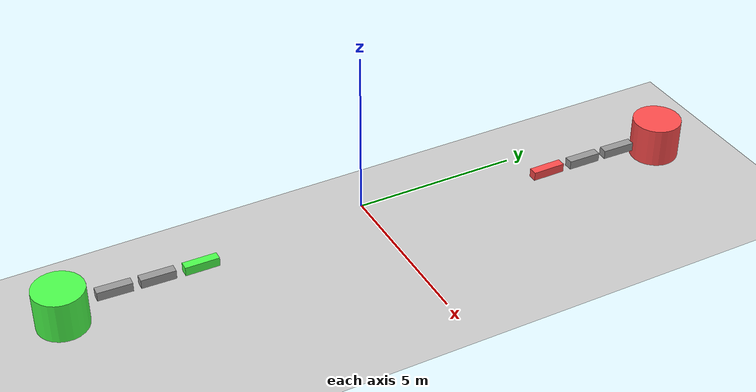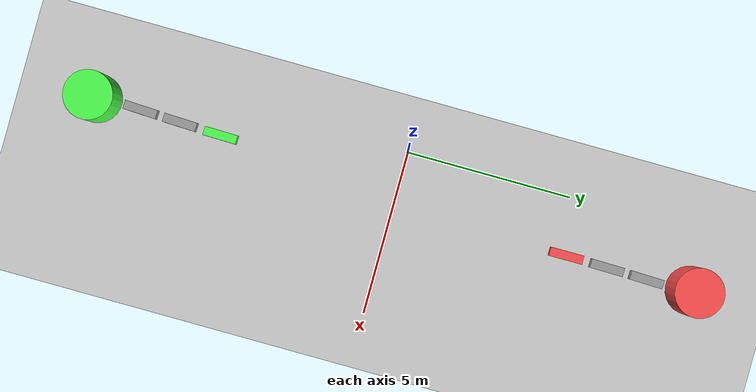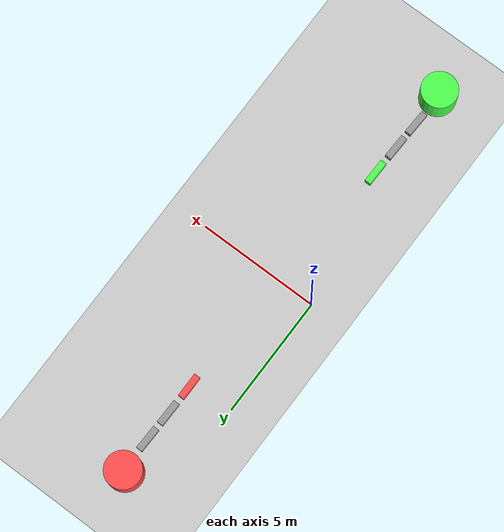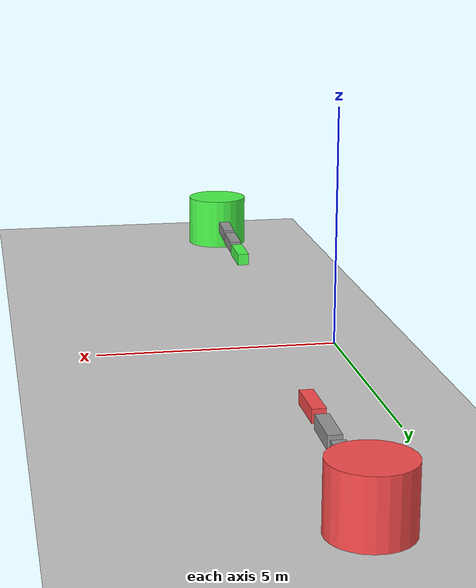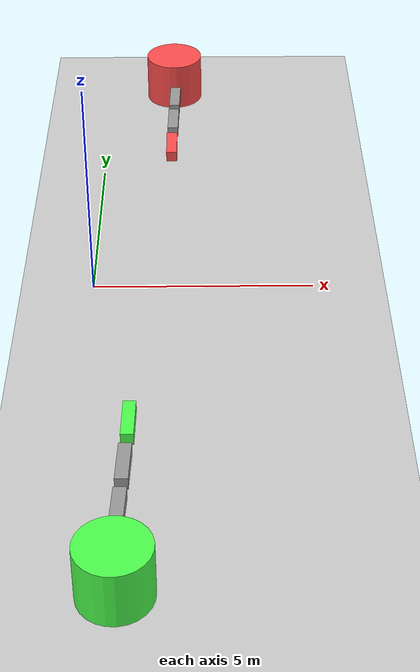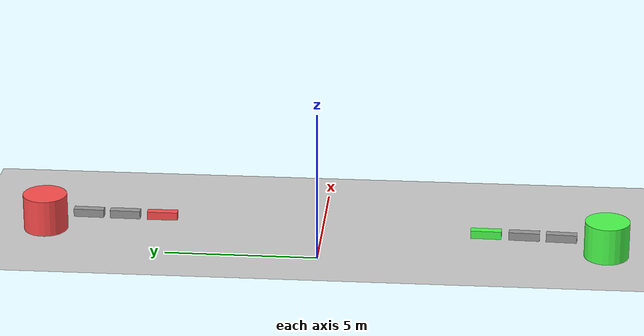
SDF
<sdf version="1.6">
 <world name="default">
  <light name="sun" type="directional">
   <pose>0 0 10 0 -0 0</pose>
   <diffuse>0.8 0.8 0.8 1</diffuse>
   <specular>0.2 0.2 0.2 1</specular>
   <attenuation>
    <range>1000</range>
    <constant>0.9</constant>
    <linear>0.01</linear>
    <quadratic>0.001</quadratic>
   </attenuation>
   <direction>-0.5 0.1 -0.9</direction>
  </light>
  <model name="ground_plane">
   <static>1</static>
   <link name="link">
    <collision name="collision">
     <geometry><plane><normal>0 0 1</normal><size>100 100</size></plane></geometry>
     <surface><friction><ode><mu>0.1</mu><mu2>0.1</mu2></ode></friction></surface>
    </collision>
    <visual name="visual">
     <cast_shadows>0</cast_shadows>
     <geometry><plane><normal>0 0 1</normal><size>100 100</size></plane></geometry>
     <material>
      <script><uri>file://media/materials/scripts/gazebo.material</uri><name>Gazebo/Grey</name></script>
     </material>
    </visual>
   </link>
  </model>
  <gravity>0 0 -9.8</gravity>
  <magnetic_field>6e-06 2.3e-05 -4.2e-05</magnetic_field>
  <atmosphere type="adiabatic"/>
  <physics name="default_physics" default="0" type="ode">
   <max_step_size>0.001</max_step_size>
   <real_time_factor>1</real_time_factor>
   <real_time_update_rate>1000</real_time_update_rate>
  </physics>
  <scene><ambient>0.4 0.4 0.4 1</ambient><background>0.7 0.7 0.7 1</background><shadows>1</shadows></scene>
  <spherical_coordinates>
   <surface_model>EARTH_WGS84</surface_model>
   <latitude_deg>0</latitude_deg>
   <longitude_deg>0</longitude_deg>
   <elevation>0</elevation>
   <heading_deg>0</heading_deg>
  </spherical_coordinates>
  <model name="bot1">
   <link name="link_base">
    <pose>1.72087 -0.200928 1e-06 0 0 -0.427261</pose>
    <inertial>
     <mass>10</mass>
     <inertia><ixx>0.67349</ixx><ixy>0</ixy><ixz>0</ixz><iyy>0.67349</iyy><iyz>0</iyz><izz>0.702036</izz></inertia>
    </inertial>
    <self_collide>1</self_collide>
    <visual name="visual">
     <geometry><cylinder><radius>0.732908</radius><length>1.21667</length></cylinder></geometry>
     <material>
      <lighting>1</lighting>
      <script><uri>file://media/materials/scripts/gazebo.material</uri><name>Gazebo/Grey</name></script>
      <ambient>0.3 1 0.3 1</ambient>
      <diffuse>0.7 0.7 0.7 1</diffuse>
      <specular>0.01 0.01 0.01 1</specular>
      <emissive>0 0 0 1</emissive>
      <shader type="vertex"><normal_map>__default__</normal_map></shader>
     </material>
    </visual>
    <collision name="collision">
     <geometry><cylinder><radius>0.732908</radius><length>1.21667</length></cylinder></geometry>
     <surface>
      <friction>
       <ode><mu>1</mu><mu2>1</mu2><fdir1>0 0 0</fdir1><slip1>0</slip1><slip2>0</slip2></ode>
       <torsional>
        <coefficient>1</coefficient>
        <patch_radius>0</patch_radius>
        <surface_radius>0</surface_radius>
        <use_patch_radius>1</use_patch_radius>
        <ode><slip>0</slip></ode>
       </torsional>
      </friction>
      <bounce><restitution_coefficient>0</restitution_coefficient><threshold>1e+06</threshold></bounce>
      <contact>
       <collide_without_contact>0</collide_without_contact>
       <collide_without_contact_bitmask>1</collide_without_contact_bitmask>
       <collide_bitmask>1</collide_bitmask>
       <ode>
        <soft_cfm>0</soft_cfm>
        <soft_erp>0.2</soft_erp>
        <kp>1e+13</kp>
        <kd>1</kd>
        <max_vel>0.01</max_vel>
        <min_depth>0</min_depth>
       </ode>
       <bullet>
        <split_impulse>1</split_impulse>
        <split_impulse_penetration_threshold>-0.01</split_impulse_penetration_threshold>
        <soft_cfm>0</soft_cfm>
        <soft_erp>0.2</soft_erp>
        <kp>1e+13</kp>
        <kd>1</kd>
       </bullet>
      </contact>
     </surface>
    </collision>
   </link>
   <link name="link_box1">
    <pose>0.253886 -0.222325 -0 0 0 -0.034076</pose>
    <inertial>
     <mass>0.0692339</mass>
     <inertia>
      <ixx>0.00079892</ixx>
      <ixy>0</ixy>
      <ixz>0</ixz>
      <iyy>0.00617228</iyy>
      <iyz>0</iyz>
      <izz>0.00616562</izz>
     </inertia>
    </inertial>
    <self_collide>1</self_collide>
    <visual name="visual">
     <geometry><box><size>1 0.262029 0.264226</size></box></geometry>
     <material>
      <lighting>1</lighting>
      <script><uri>file://media/materials/scripts/gazebo.material</uri><name>Gazebo/Grey</name></script>
      <ambient>0.3 0.3 0.3 1</ambient>
      <diffuse>0.7 0.7 0.7 1</diffuse>
      <specular>0.01 0.01 0.01 1</specular>
      <emissive>0 0 0 1</emissive>
      <shader type="vertex"><normal_map>__default__</normal_map></shader>
     </material>
    </visual>
    <collision name="collision">
     <geometry><box><size>1 0.262029 0.264226</size></box></geometry>
     <surface>
      <friction>
       <ode><mu>1</mu><mu2>1</mu2><fdir1>0 0 0</fdir1><slip1>0</slip1><slip2>0</slip2></ode>
       <torsional>
        <coefficient>1</coefficient>
        <patch_radius>0</patch_radius>
        <surface_radius>0</surface_radius>
        <use_patch_radius>1</use_patch_radius>
        <ode><slip>0</slip></ode>
       </torsional>
      </friction>
      <bounce><restitution_coefficient>0</restitution_coefficient><threshold>1e+06</threshold></bounce>
      <contact>
       <collide_without_contact>0</collide_without_contact>
       <collide_without_contact_bitmask>1</collide_without_contact_bitmask>
       <collide_bitmask>1</collide_bitmask>
       <ode>
        <soft_cfm>0</soft_cfm>
        <soft_erp>0.2</soft_erp>
        <kp>1e+13</kp>
        <kd>1</kd>
        <max_vel>0.01</max_vel>
        <min_depth>0</min_depth>
       </ode>
       <bullet>
        <split_impulse>1</split_impulse>
        <split_impulse_penetration_threshold>-0.01</split_impulse_penetration_threshold>
        <soft_cfm>0</soft_cfm>
        <soft_erp>0.2</soft_erp>
        <kp>1e+13</kp>
        <kd>1</kd>
       </bullet>
      </contact>
     </surface>
    </collision>
   </link>
   <link name="link_box2">
    <pose>-0.957688 -0.18572 0 0 0 -0.022868</pose>
    <inertial>
     <mass>0.0692339</mass>
     <inertia>
      <ixx>0.00079892</ixx>
      <ixy>0</ixy>
      <ixz>0</ixz>
      <iyy>0.00617228</iyy>
      <iyz>0</iyz>
      <izz>0.00616562</izz>
     </inertia>
    </inertial>
    <self_collide>1</self_collide>
    <visual name="visual">
     <geometry><box><size>1 0.262029 0.264226</size></box></geometry>
     <material>
      <lighting>1</lighting>
      <script><uri>file://media/materials/scripts/gazebo.material</uri><name>Gazebo/Grey</name></script>
      <ambient>0.3 0.3 0.3 1</ambient>
      <diffuse>0.7 0.7 0.7 1</diffuse>
      <specular>0.01 0.01 0.01 1</specular>
      <emissive>0 0 0 1</emissive>
      <shader type="vertex"><normal_map>__default__</normal_map></shader>
     </material>
    </visual>
    <collision name="collision">
     <geometry><box><size>1 0.262029 0.264226</size></box></geometry>
     <surface>
      <friction>
       <ode><mu>1</mu><mu2>1</mu2><fdir1>0 0 0</fdir1><slip1>0</slip1><slip2>0</slip2></ode>
       <torsional>
        <coefficient>1</coefficient>
        <patch_radius>0</patch_radius>
        <surface_radius>0</surface_radius>
        <use_patch_radius>1</use_patch_radius>
        <ode><slip>0</slip></ode>
       </torsional>
      </friction>
      <bounce><restitution_coefficient>0</restitution_coefficient><threshold>1e+06</threshold></bounce>
      <contact>
       <collide_without_contact>0</collide_without_contact>
       <collide_without_contact_bitmask>1</collide_without_contact_bitmask>
       <collide_bitmask>1</collide_bitmask>
       <ode>
        <soft_cfm>0</soft_cfm>
        <soft_erp>0.2</soft_erp>
        <kp>1e+13</kp>
        <kd>1</kd>
        <max_vel>0.01</max_vel>
        <min_depth>0</min_depth>
       </ode>
       <bullet>
        <split_impulse>1</split_impulse>
        <split_impulse_penetration_threshold>-0.01</split_impulse_penetration_threshold>
        <soft_cfm>0</soft_cfm>
        <soft_erp>0.2</soft_erp>
        <kp>1e+13</kp>
        <kd>1</kd>
       </bullet>
      </contact>
     </surface>
    </collision>
   </link>
   <link name="link_box3">
    <pose>-2.20178 -0.155102 -0 0 -0 -0.003939</pose>
    <inertial>
     <mass>0.0692339</mass>
     <inertia>
      <ixx>0.00079892</ixx>
      <ixy>0</ixy>
      <ixz>0</ixz>
      <iyy>0.00617228</iyy>
      <iyz>0</iyz>
      <izz>0.00616562</izz>
     </inertia>
    </inertial>
    <self_collide>1</self_collide>
    <visual name="visual">
     <geometry><box><size>1 0.262029 0.264226</size></box></geometry>
     <material>
      <lighting>1</lighting>
      <script><uri>file://media/materials/scripts/gazebo.material</uri><name>Gazebo/Grey</name></script>
      <ambient>0.3 1 0.3 1</ambient>
      <diffuse>0.7 0.7 0.7 1</diffuse>
      <specular>0.01 0.01 0.01 1</specular>
      <emissive>0 0 0 1</emissive>
      <shader type="vertex"><normal_map>__default__</normal_map></shader>
     </material>
    </visual>
    <collision name="collision">
     <geometry><box><size>1 0.262029 0.264226</size></box></geometry>
     <surface>
      <friction>
       <ode><mu>1</mu><mu2>1</mu2><fdir1>0 0 0</fdir1><slip1>0</slip1><slip2>0</slip2></ode>
       <torsional>
        <coefficient>1</coefficient>
        <patch_radius>0</patch_radius>
        <surface_radius>0</surface_radius>
        <use_patch_radius>1</use_patch_radius>
        <ode><slip>0</slip></ode>
       </torsional>
      </friction>
      <bounce><restitution_coefficient>0</restitution_coefficient><threshold>1e+06</threshold></bounce>
      <contact>
       <collide_without_contact>0</collide_without_contact>
       <collide_without_contact_bitmask>1</collide_without_contact_bitmask>
       <collide_bitmask>1</collide_bitmask>
       <ode>
        <soft_cfm>0</soft_cfm>
        <soft_erp>0.2</soft_erp>
        <kp>1e+13</kp>
        <kd>1</kd>
        <max_vel>0.01</max_vel>
        <min_depth>0</min_depth>
       </ode>
       <bullet>
        <split_impulse>1</split_impulse>
        <split_impulse_penetration_threshold>-0.01</split_impulse_penetration_threshold>
        <soft_cfm>0</soft_cfm>
        <soft_erp>0.2</soft_erp>
        <kp>1e+13</kp>
        <kd>1</kd>
       </bullet>
      </contact>
     </surface>
    </collision>
   </link>
   <joint name="link_base_JOINT_0" type="revolute">
    <parent>link_base</parent>
    <child>link_box1</child>
    <pose>0.5 0 0 0 -0 0</pose>
    <axis>
     <xyz>0 0 1</xyz>
     <use_parent_model_frame>0</use_parent_model_frame>
     <limit>
      <lower>-1.79769e+308</lower>
      <upper>1.79769e+308</upper>
      <effort>-1</effort>
      <velocity>-1</velocity>
     </limit>
     <dynamics>
      <spring_reference>0</spring_reference>
      <spring_stiffness>0</spring_stiffness>
      <damping>0</damping>
      <friction>0</friction>
     </dynamics>
    </axis>
    <physics>
     <ode><limit><cfm>0</cfm><erp>0.2</erp></limit><suspension><cfm>0</cfm><erp>0.2</erp></suspension></ode>
    </physics>
   </joint>
   <joint name="link_box1_JOINT_1" type="revolute">
    <parent>link_box1</parent>
    <child>link_box2</child>
    <pose>0.5 0 0 0 -0 0</pose>
    <axis>
     <xyz>0 0 1</xyz>
     <use_parent_model_frame>0</use_parent_model_frame>
     <limit>
      <lower>-1.79769e+308</lower>
      <upper>1.79769e+308</upper>
      <effort>-1</effort>
      <velocity>-1</velocity>
     </limit>
     <dynamics>
      <spring_reference>0</spring_reference>
      <spring_stiffness>0</spring_stiffness>
      <damping>0</damping>
      <friction>0</friction>
     </dynamics>
    </axis>
    <physics>
     <ode><limit><cfm>0</cfm><erp>0.2</erp></limit><suspension><cfm>0</cfm><erp>0.2</erp></suspension></ode>
    </physics>
   </joint>
   <joint name="link_box2_JOINT_2" type="revolute">
    <parent>link_box2</parent>
    <child>link_box3</child>
    <pose>0.5 0 0 0 -0 0</pose>
    <axis>
     <xyz>0 0 1</xyz>
     <use_parent_model_frame>0</use_parent_model_frame>
     <limit>
      <lower>-1.79769e+308</lower>
      <upper>1.79769e+308</upper>
      <effort>-1</effort>
      <velocity>-1</velocity>
     </limit>
     <dynamics>
      <spring_reference>0</spring_reference>
      <spring_stiffness>0</spring_stiffness>
      <damping>0</damping>
      <friction>0</friction>
     </dynamics>
    </axis>
    <physics>
     <ode><limit><cfm>0</cfm><erp>0.2</erp></limit><suspension><cfm>0</cfm><erp>0.2</erp></suspension></ode>
    </physics>
   </joint>
   <static>0</static>
   <plugin name="bot1_control" filename="libbattlebots_gazebo_plugin.so"/>
   <pose>1.15483 -7.63182 0.608334 0 0 -1.58305</pose>
  </model>
  <model name="bot2">
   <link name="link_base">
    <pose>1.72087 -0.200928 1e-06 0 -0 -0.427261</pose>
    <inertial>
     <mass>10</mass>
     <inertia><ixx>0.67349</ixx><ixy>0</ixy><ixz>0</ixz><iyy>0.67349</iyy><iyz>0</iyz><izz>0.702036</izz></inertia>
    </inertial>
    <self_collide>1</self_collide>
    <visual name="visual">
     <geometry><cylinder><radius>0.732908</radius><length>1.21667</length></cylinder></geometry>
     <material>
      <lighting>1</lighting>
      <script><uri>file://media/materials/scripts/gazebo.material</uri><name>Gazebo/Grey</name></script>
      <ambient>1 0.3 0.3 1</ambient>
      <diffuse>0.7 0.7 0.7 1</diffuse>
      <specular>0.01 0.01 0.01 1</specular>
      <emissive>0 0 0 1</emissive>
      <shader type="vertex"><normal_map>__default__</normal_map></shader>
     </material>
    </visual>
    <collision name="collision">
     <geometry><cylinder><radius>0.732908</radius><length>1.21667</length></cylinder></geometry>
     <surface>
      <friction>
       <ode><mu>1</mu><mu2>1</mu2><fdir1>0 0 0</fdir1><slip1>0</slip1><slip2>0</slip2></ode>
       <torsional>
        <coefficient>1</coefficient>
        <patch_radius>0</patch_radius>
        <surface_radius>0</surface_radius>
        <use_patch_radius>1</use_patch_radius>
        <ode><slip>0</slip></ode>
       </torsional>
      </friction>
      <bounce><restitution_coefficient>0</restitution_coefficient><threshold>1e+06</threshold></bounce>
      <contact>
       <collide_without_contact>0</collide_without_contact>
       <collide_without_contact_bitmask>1</collide_without_contact_bitmask>
       <collide_bitmask>1</collide_bitmask>
       <ode>
        <soft_cfm>0</soft_cfm>
        <soft_erp>0.2</soft_erp>
        <kp>1e+13</kp>
        <kd>1</kd>
        <max_vel>0.01</max_vel>
        <min_depth>0</min_depth>
       </ode>
       <bullet>
        <split_impulse>1</split_impulse>
        <split_impulse_penetration_threshold>-0.01</split_impulse_penetration_threshold>
        <soft_cfm>0</soft_cfm>
        <soft_erp>0.2</soft_erp>
        <kp>1e+13</kp>
        <kd>1</kd>
       </bullet>
      </contact>
     </surface>
    </collision>
   </link>
   <link name="link_box1">
    <pose>0.253886 -0.222325 0 0 0 -0.034076</pose>
    <inertial>
     <mass>0.0692339</mass>
     <inertia>
      <ixx>0.00079892</ixx>
      <ixy>0</ixy>
      <ixz>0</ixz>
      <iyy>0.00617228</iyy>
      <iyz>0</iyz>
      <izz>0.00616562</izz>
     </inertia>
    </inertial>
    <self_collide>1</self_collide>
    <visual name="visual">
     <geometry><box><size>1 0.262029 0.264226</size></box></geometry>
     <material>
      <lighting>1</lighting>
      <script><uri>file://media/materials/scripts/gazebo.material</uri><name>Gazebo/Grey</name></script>
      <ambient>0.3 0.3 0.3 1</ambient>
      <diffuse>0.7 0.7 0.7 1</diffuse>
      <specular>0.01 0.01 0.01 1</specular>
      <emissive>0 0 0 1</emissive>
      <shader type="vertex"><normal_map>__default__</normal_map></shader>
     </material>
    </visual>
    <collision name="collision">
     <geometry><box><size>1 0.262029 0.264226</size></box></geometry>
     <surface>
      <friction>
       <ode><mu>1</mu><mu2>1</mu2><fdir1>0 0 0</fdir1><slip1>0</slip1><slip2>0</slip2></ode>
       <torsional>
        <coefficient>1</coefficient>
        <patch_radius>0</patch_radius>
        <surface_radius>0</surface_radius>
        <use_patch_radius>1</use_patch_radius>
        <ode><slip>0</slip></ode>
       </torsional>
      </friction>
      <bounce><restitution_coefficient>0</restitution_coefficient><threshold>1e+06</threshold></bounce>
      <contact>
       <collide_without_contact>0</collide_without_contact>
       <collide_without_contact_bitmask>1</collide_without_contact_bitmask>
       <collide_bitmask>1</collide_bitmask>
       <ode>
        <soft_cfm>0</soft_cfm>
        <soft_erp>0.2</soft_erp>
        <kp>1e+13</kp>
        <kd>1</kd>
        <max_vel>0.01</max_vel>
        <min_depth>0</min_depth>
       </ode>
       <bullet>
        <split_impulse>1</split_impulse>
        <split_impulse_penetration_threshold>-0.01</split_impulse_penetration_threshold>
        <soft_cfm>0</soft_cfm>
        <soft_erp>0.2</soft_erp>
        <kp>1e+13</kp>
        <kd>1</kd>
       </bullet>
      </contact>
     </surface>
    </collision>
   </link>
   <link name="link_box2">
    <pose>-0.957688 -0.18572 0 0 0 -0.022868</pose>
    <inertial>
     <mass>0.0692339</mass>
     <inertia>
      <ixx>0.00079892</ixx>
      <ixy>0</ixy>
      <ixz>0</ixz>
      <iyy>0.00617228</iyy>
      <iyz>0</iyz>
      <izz>0.00616562</izz>
     </inertia>
    </inertial>
    <self_collide>1</self_collide>
    <visual name="visual">
     <geometry><box><size>1 0.262029 0.264226</size></box></geometry>
     <material>
      <lighting>1</lighting>
      <script><uri>file://media/materials/scripts/gazebo.material</uri><name>Gazebo/Grey</name></script>
      <ambient>0.3 0.3 0.3 1</ambient>
      <diffuse>0.7 0.7 0.7 1</diffuse>
      <specular>0.01 0.01 0.01 1</specular>
      <emissive>0 0 0 1</emissive>
      <shader type="vertex"><normal_map>__default__</normal_map></shader>
     </material>
    </visual>
    <collision name="collision">
     <geometry><box><size>1 0.262029 0.264226</size></box></geometry>
     <surface>
      <friction>
       <ode><mu>1</mu><mu2>1</mu2><fdir1>0 0 0</fdir1><slip1>0</slip1><slip2>0</slip2></ode>
       <torsional>
        <coefficient>1</coefficient>
        <patch_radius>0</patch_radius>
        <surface_radius>0</surface_radius>
        <use_patch_radius>1</use_patch_radius>
        <ode><slip>0</slip></ode>
       </torsional>
      </friction>
      <bounce><restitution_coefficient>0</restitution_coefficient><threshold>1e+06</threshold></bounce>
      <contact>
       <collide_without_contact>0</collide_without_contact>
       <collide_without_contact_bitmask>1</collide_without_contact_bitmask>
       <collide_bitmask>1</collide_bitmask>
       <ode>
        <soft_cfm>0</soft_cfm>
        <soft_erp>0.2</soft_erp>
        <kp>1e+13</kp>
        <kd>1</kd>
        <max_vel>0.01</max_vel>
        <min_depth>0</min_depth>
       </ode>
       <bullet>
        <split_impulse>1</split_impulse>
        <split_impulse_penetration_threshold>-0.01</split_impulse_penetration_threshold>
        <soft_cfm>0</soft_cfm>
        <soft_erp>0.2</soft_erp>
        <kp>1e+13</kp>
        <kd>1</kd>
       </bullet>
      </contact>
     </surface>
    </collision>
   </link>
   <link name="link_box3">
    <pose>-2.20178 -0.155102 0 0 -0 -0.003939</pose>
    <inertial>
     <mass>0.0692339</mass>
     <inertia>
      <ixx>0.00079892</ixx>
      <ixy>0</ixy>
      <ixz>0</ixz>
      <iyy>0.00617228</iyy>
      <iyz>0</iyz>
      <izz>0.00616562</izz>
     </inertia>
    </inertial>
    <self_collide>1</self_collide>
    <visual name="visual">
     <geometry><box><size>1 0.262029 0.264226</size></box></geometry>
     <material>
      <lighting>1</lighting>
      <script><uri>file://media/materials/scripts/gazebo.material</uri><name>Gazebo/Grey</name></script>
      <ambient>1 0.3 0.3 1</ambient>
      <diffuse>0.7 0.7 0.7 1</diffuse>
      <specular>0.01 0.01 0.01 1</specular>
      <emissive>0 0 0 1</emissive>
      <shader type="vertex"><normal_map>__default__</normal_map></shader>
     </material>
    </visual>
    <collision name="collision">
     <geometry><box><size>1 0.262029 0.264226</size></box></geometry>
     <surface>
      <friction>
       <ode><mu>1</mu><mu2>1</mu2><fdir1>0 0 0</fdir1><slip1>0</slip1><slip2>0</slip2></ode>
       <torsional>
        <coefficient>1</coefficient>
        <patch_radius>0</patch_radius>
        <surface_radius>0</surface_radius>
        <use_patch_radius>1</use_patch_radius>
        <ode><slip>0</slip></ode>
       </torsional>
      </friction>
      <bounce><restitution_coefficient>0</restitution_coefficient><threshold>1e+06</threshold></bounce>
      <contact>
       <collide_without_contact>0</collide_without_contact>
       <collide_without_contact_bitmask>1</collide_without_contact_bitmask>
       <collide_bitmask>1</collide_bitmask>
       <ode>
        <soft_cfm>0</soft_cfm>
        <soft_erp>0.2</soft_erp>
        <kp>1e+13</kp>
        <kd>1</kd>
        <max_vel>0.01</max_vel>
        <min_depth>0</min_depth>
       </ode>
       <bullet>
        <split_impulse>1</split_impulse>
        <split_impulse_penetration_threshold>-0.01</split_impulse_penetration_threshold>
        <soft_cfm>0</soft_cfm>
        <soft_erp>0.2</soft_erp>
        <kp>1e+13</kp>
        <kd>1</kd>
       </bullet>
      </contact>
     </surface>
    </collision>
   </link>
   <joint name="link_base_JOINT_0" type="revolute">
    <parent>link_base</parent>
    <child>link_box1</child>
    <pose>0.5 0 0 0 -0 0</pose>
    <axis>
     <xyz>0 0 1</xyz>
     <use_parent_model_frame>0</use_parent_model_frame>
     <limit>
      <lower>-1.79769e+308</lower>
      <upper>1.79769e+308</upper>
      <effort>-1</effort>
      <velocity>-1</velocity>
     </limit>
     <dynamics>
      <spring_reference>0</spring_reference>
      <spring_stiffness>0</spring_stiffness>
      <damping>0</damping>
      <friction>0</friction>
     </dynamics>
    </axis>
    <physics>
     <ode><limit><cfm>0</cfm><erp>0.2</erp></limit><suspension><cfm>0</cfm><erp>0.2</erp></suspension></ode>
    </physics>
   </joint>
   <joint name="link_box1_JOINT_1" type="revolute">
    <parent>link_box1</parent>
    <child>link_box2</child>
    <pose>0.5 0 0 0 -0 0</pose>
    <axis>
     <xyz>0 0 1</xyz>
     <use_parent_model_frame>0</use_parent_model_frame>
     <limit>
      <lower>-1.79769e+308</lower>
      <upper>1.79769e+308</upper>
      <effort>-1</effort>
      <velocity>-1</velocity>
     </limit>
     <dynamics>
      <spring_reference>0</spring_reference>
      <spring_stiffness>0</spring_stiffness>
      <damping>0</damping>
      <friction>0</friction>
     </dynamics>
    </axis>
    <physics>
     <ode><limit><cfm>0</cfm><erp>0.2</erp></limit><suspension><cfm>0</cfm><erp>0.2</erp></suspension></ode>
    </physics>
   </joint>
   <joint name="link_box2_JOINT_2" type="revolute">
    <parent>link_box2</parent>
    <child>link_box3</child>
    <pose>0.5 0 0 0 -0 0</pose>
    <axis>
     <xyz>0 0 1</xyz>
     <use_parent_model_frame>0</use_parent_model_frame>
     <limit>
      <lower>-1.79769e+308</lower>
      <upper>1.79769e+308</upper>
      <effort>-1</effort>
      <velocity>-1</velocity>
     </limit>
     <dynamics>
      <spring_reference>0</spring_reference>
      <spring_stiffness>0</spring_stiffness>
      <damping>0</damping>
      <friction>0</friction>
     </dynamics>
    </axis>
    <physics>
     <ode><limit><cfm>0</cfm><erp>0.2</erp></limit><suspension><cfm>0</cfm><erp>0.2</erp></suspension></ode>
    </physics>
   </joint>
   <static>0</static>
   <plugin name="bot2_control" filename="libbattlebots_gazebo_plugin.so"/>
   <pose>1.5347 7.4805 0.608327 0 -1e-06 1.57864</pose>
  </model>
 </world>
</sdf>
